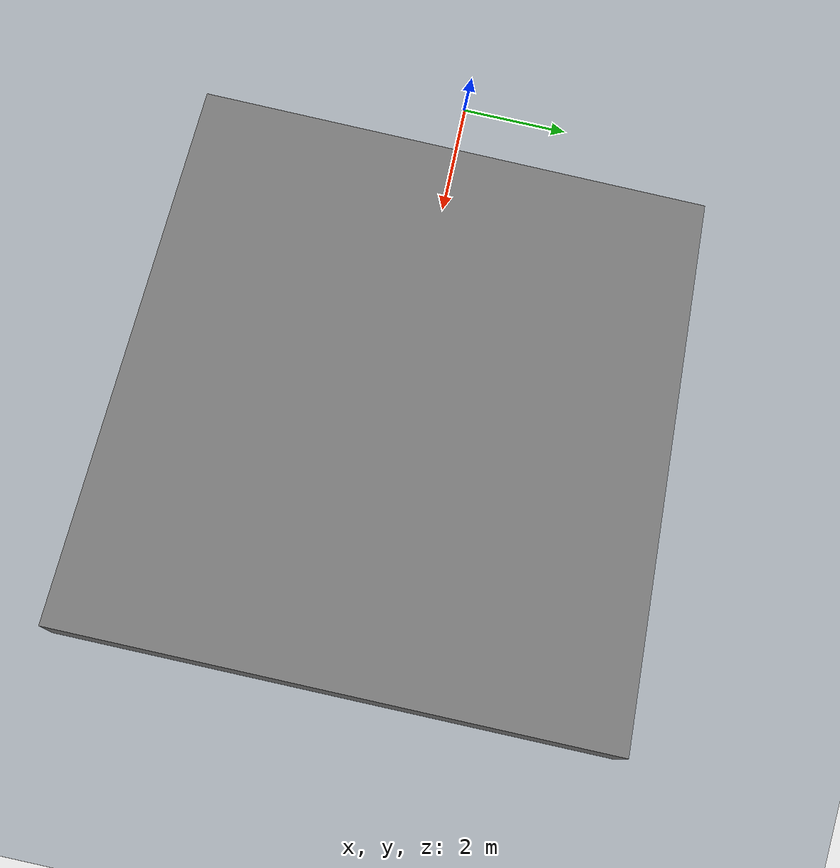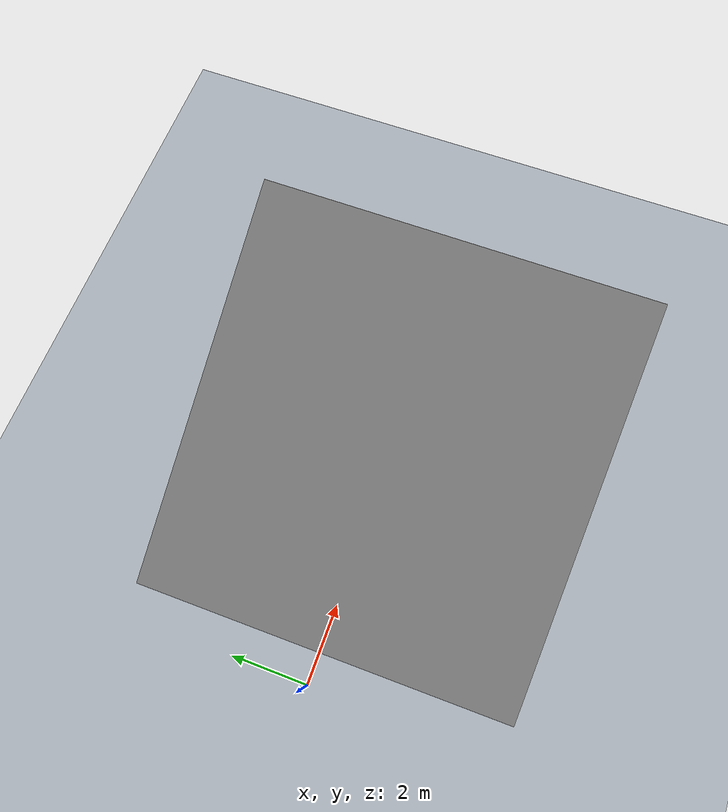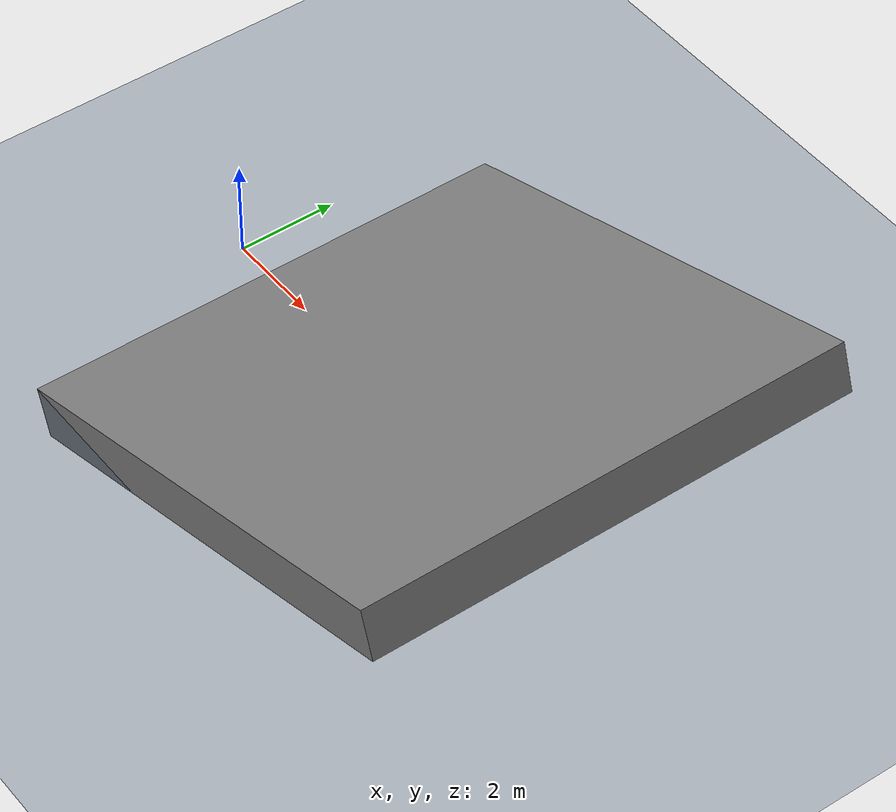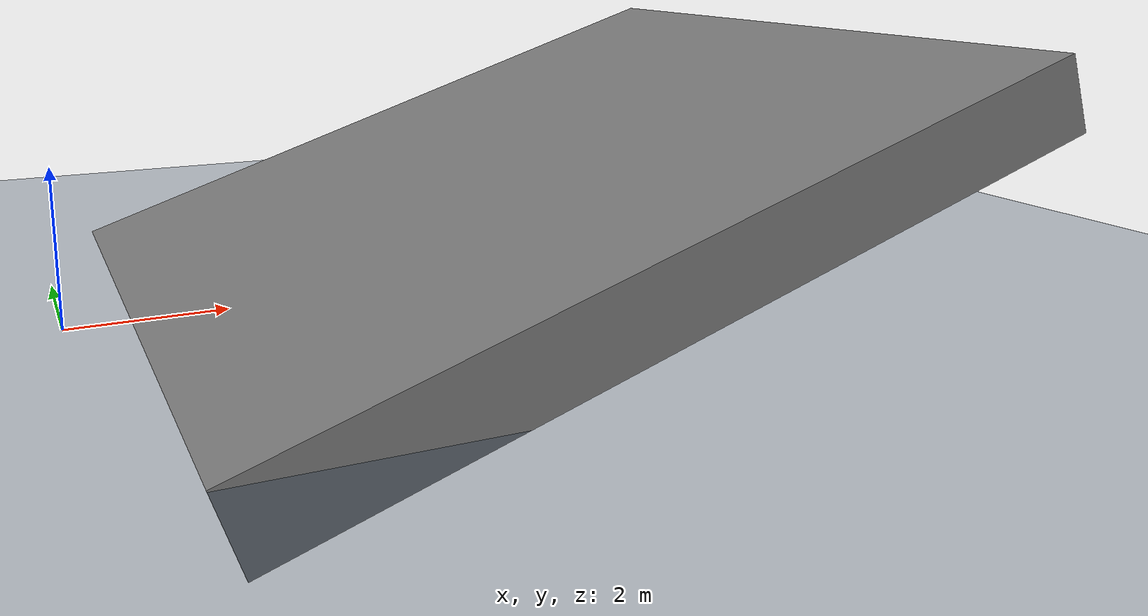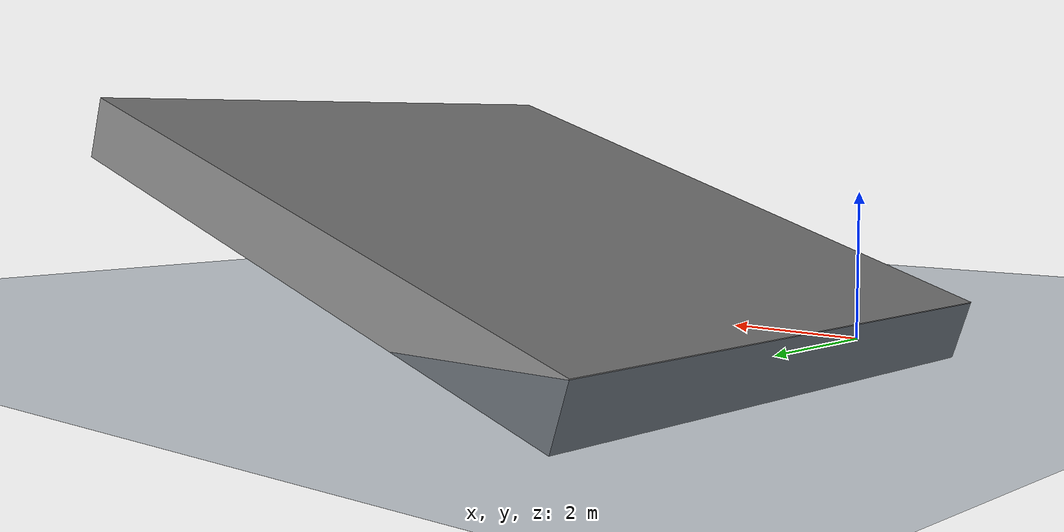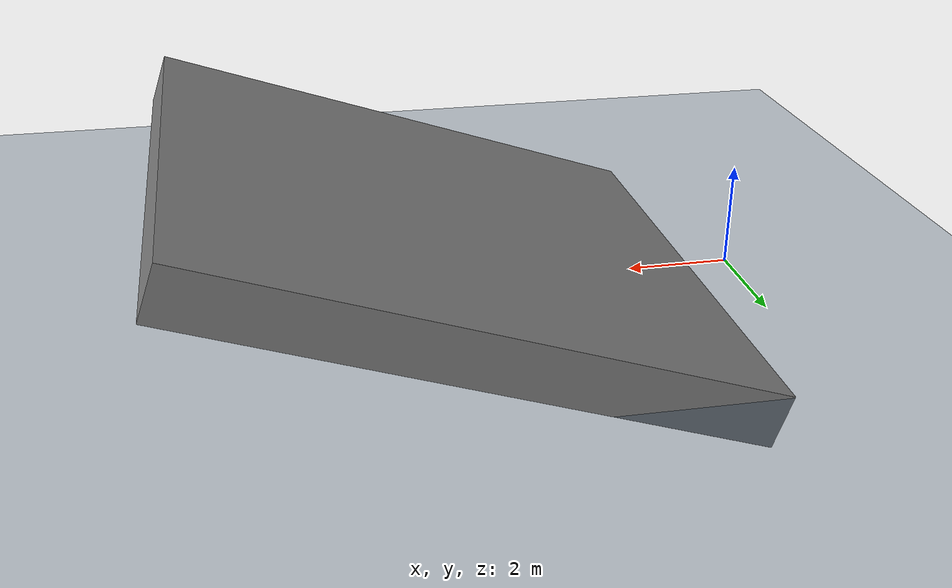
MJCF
<mujoco model="slope_5">
  <!-- Terrain Type: slope, Level: 5, Slope angle (degrees): 18.5208 -->
  <statistic center="0 0 0.1" extent="0.8" />
  <visual>
    <headlight diffuse="0.6 0.6 0.6" ambient="0.3 0.3 0.3" specular="0 0 0" />
    <rgba haze="0.15 0.25 0.35 1" />
    <global azimuth="-130" elevation="-20" />
  </visual>
  <asset>
    <texture type="skybox" builtin="gradient" rgb1="0.3 0.5 0.7" rgb2="0 0 0" width="512" height="3072" />
    <texture type="2d" name="groundplane" builtin="checker" mark="edge" rgb1="0.2 0.3 0.4" rgb2="0.1 0.2 0.3" markrgb="0.8 0.8 0.8" width="300" height="300" />
    <material name="groundplane" texture="groundplane" texuniform="true" texrepeat="5 5" reflectance="0.0" />
  </asset>
  <worldbody>
    <light pos="0 0 1.5" dir="0 0 -1" directional="true" />
    <geom name="floor" size="0 0 0.05" type="plane" material="groundplane" />
    <geom pos="5.958824861404184 0.0 1.2008959361069116" type="box" size="5.273103924634901 5.0 0.5" quat="0.9869671037542681 0.0 -0.16092214299751198 0.0" />
  </worldbody>
</mujoco>
